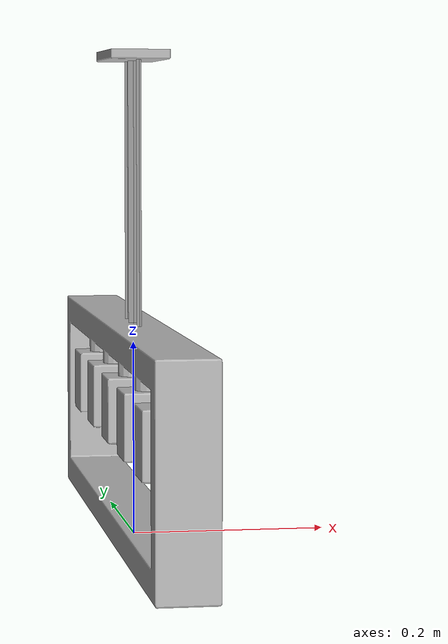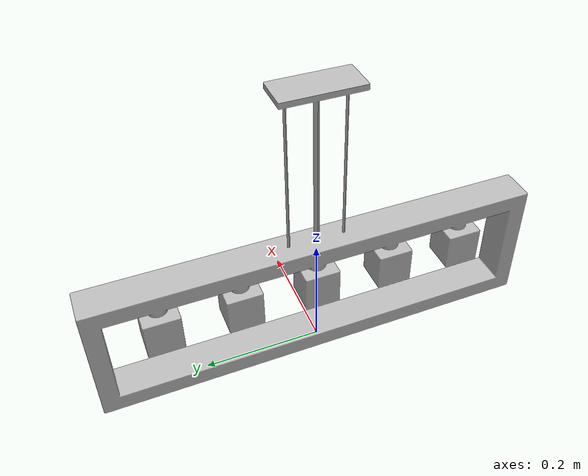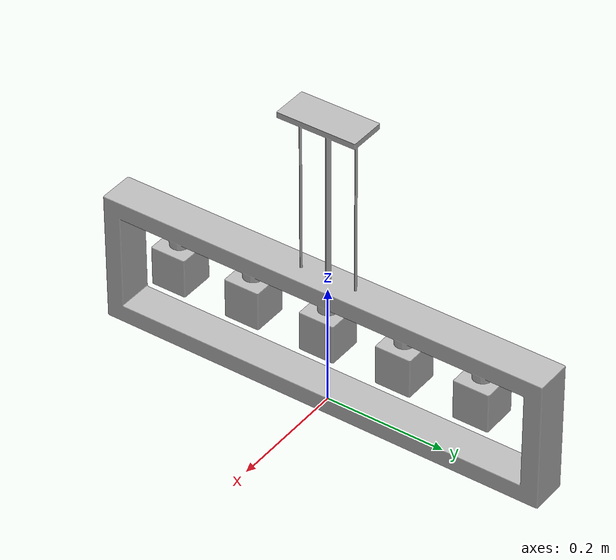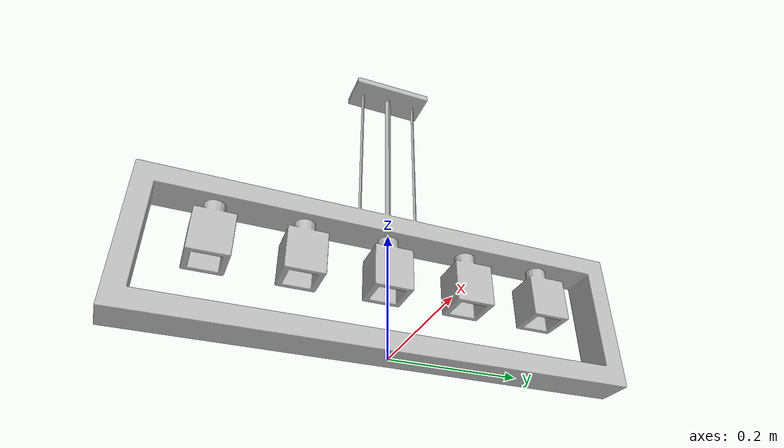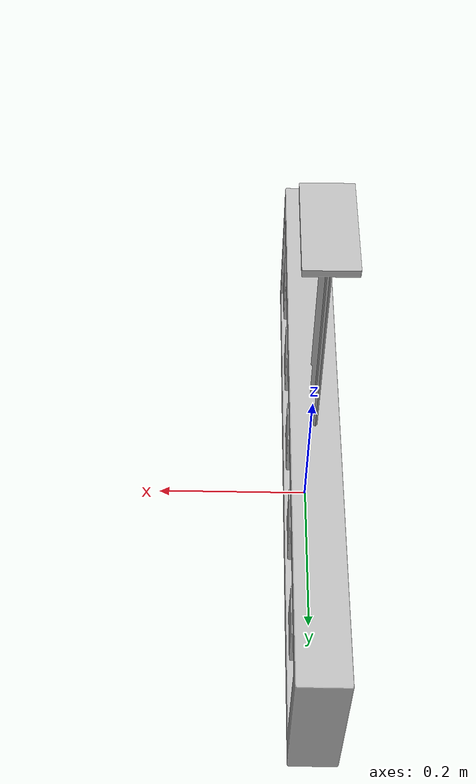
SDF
<?xml version='1.0'?>
<sdf version='1.4'>
  <model name='633'>
    <pose>0 0 0 0 0 0</pose>
    <static>true</static>
    <link name='link'>
      <collision name='collision'>
        <pose>0 0 0 0 0 0</pose>
        <geometry>
          <box>
            <size>0.06 0.76 2</size>
          </box>
        </geometry>
      </collision>
      <visual name='visual'>
        <pose>0 0 0 0 0 0</pose>
        <geometry>
          <mesh><uri>model://633/633.dae</uri></mesh>
        </geometry>
      </visual>
    </link>
  </model>
</sdf>
